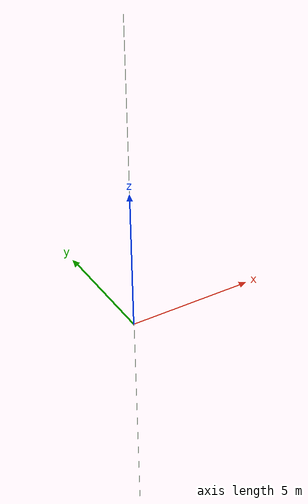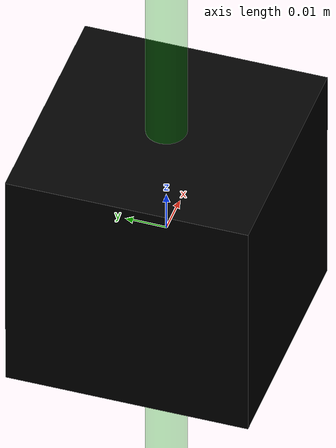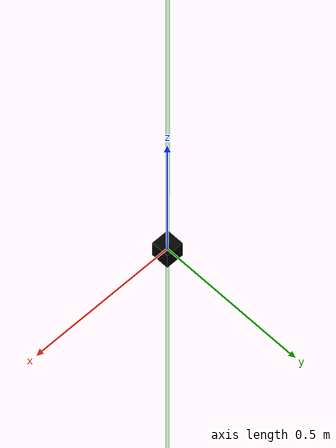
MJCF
<mujoco model="adhesive_palm">
  <actuator>
    <adhesion name="adhesion" body="eef" ctrlrange="0 1" gain="5"/>
  </actuator>
  <default>
    <default class="active_adhesion">
      <geom rgba="0 0 0 1" margin="0.02" gap="0.02" size=".03 .03 .03" type="box" group="1"/>
    </default>
  </default>
  <worldbody>
    <body name="gripper_base" pos="0 0 0">
      <site name="ft_frame" pos="0 0 0" size="0.01 0.01 0.01" rgba="1 0 0 1" type="sphere" group="1"/>
      <body name="eef">
        <site name="grip_site" pos="0 0 0" size="0.01 0.01 0.01" rgba="1 0 0 0.5" type="sphere" group="1"/>
        <site name="ee_x" pos="0.1 0 0" size="0.005 .1"  quat="0.707105  0 0.707108 0 " rgba="1 0 0 0" type="cylinder" group="1"/>
        <site name="ee_y" pos="0 0.1 0" size="0.005 .1" quat="0.707105 0.707108 0 0" rgba="0 1 0 0" type="cylinder" group="1"/>
        <site name="ee_z" pos="0 0 0.1" size="0.005 .1" quat="1 0 0 0" rgba="0 0 1 0" type="cylinder" group="1"/>
        <site name="grip_site_cylinder" pos="0 0 0" size="0.005 10" rgba="0 1 0 0.3" type="cylinder" group="1"/>
        <geom pos="0 0 0" class="active_adhesion"/>
        <inertial pos="0 0 0" quat="0 0 0 1" mass="0.01" diaginertia="0.01 0.01 0.01" />
      </body>
    </body>
  </worldbody>
  <sensor>
    <force name="force_ee" site="ft_frame"/>
    <torque name="torque_ee" site="ft_frame"/>
  </sensor>
</mujoco>
